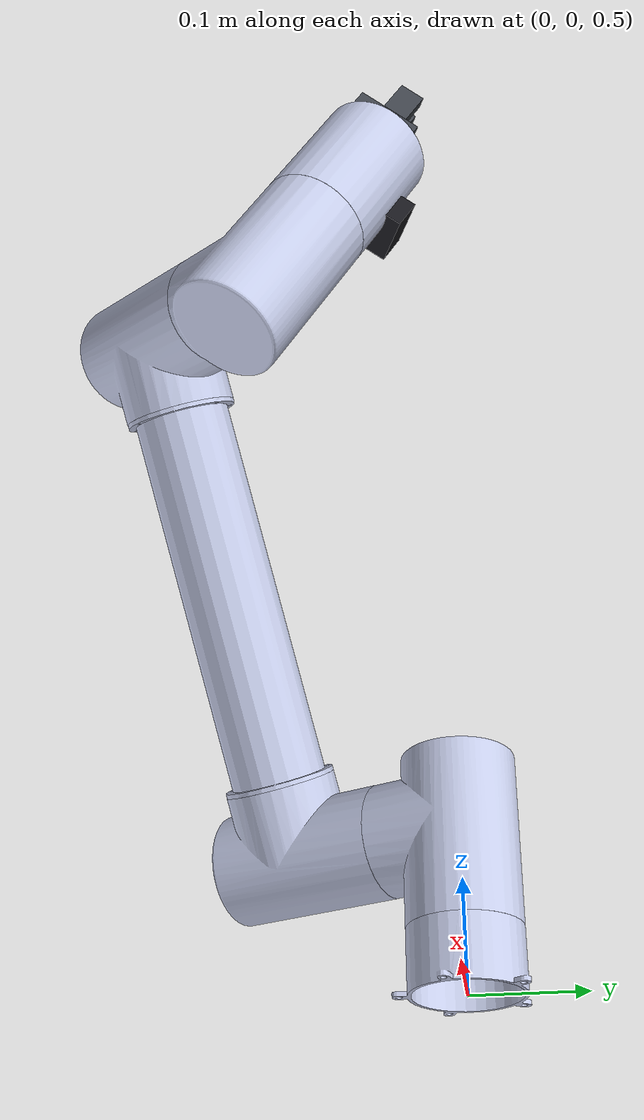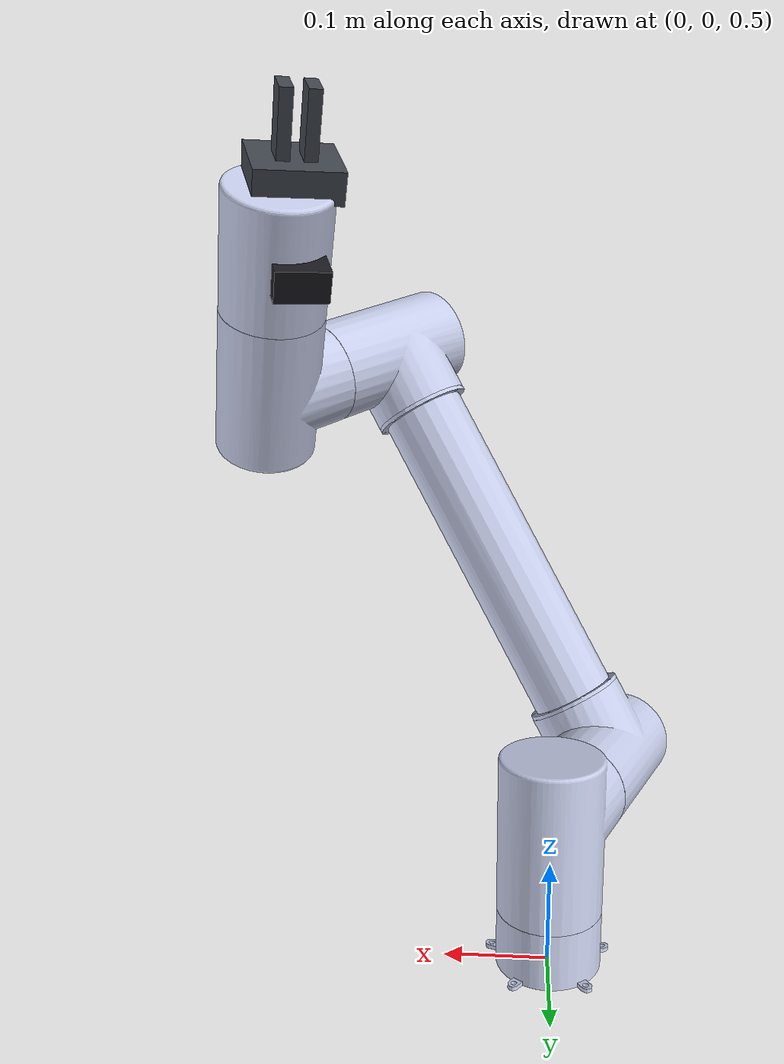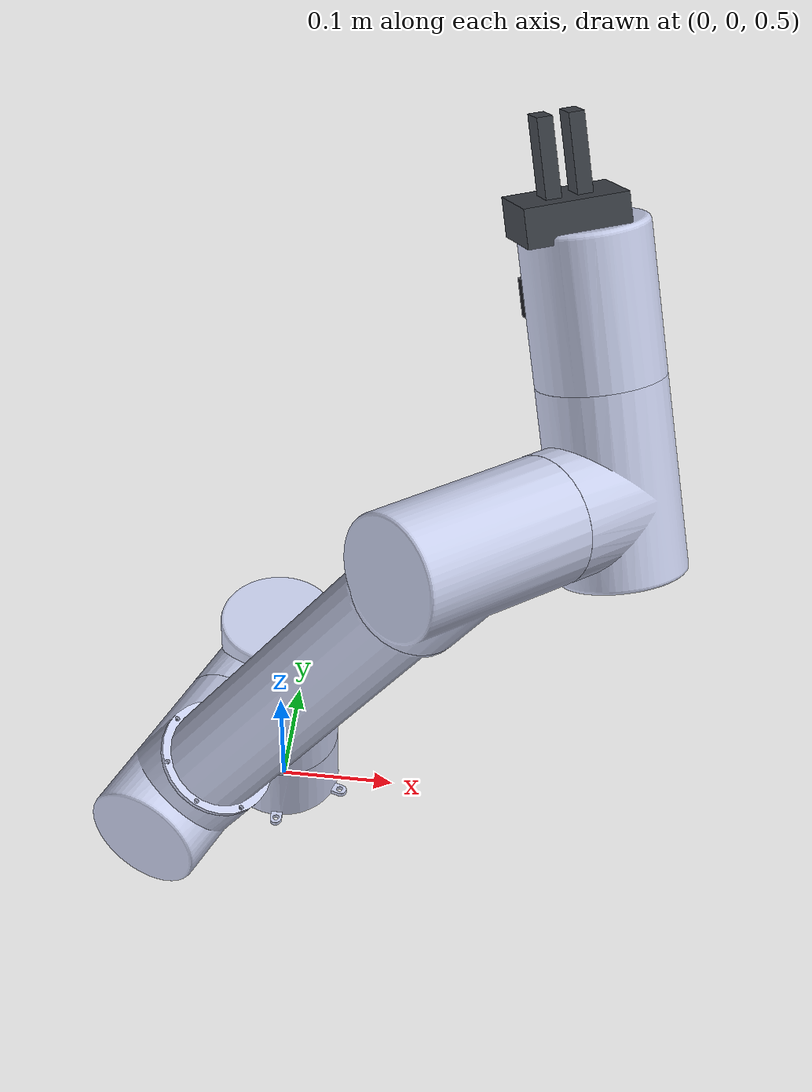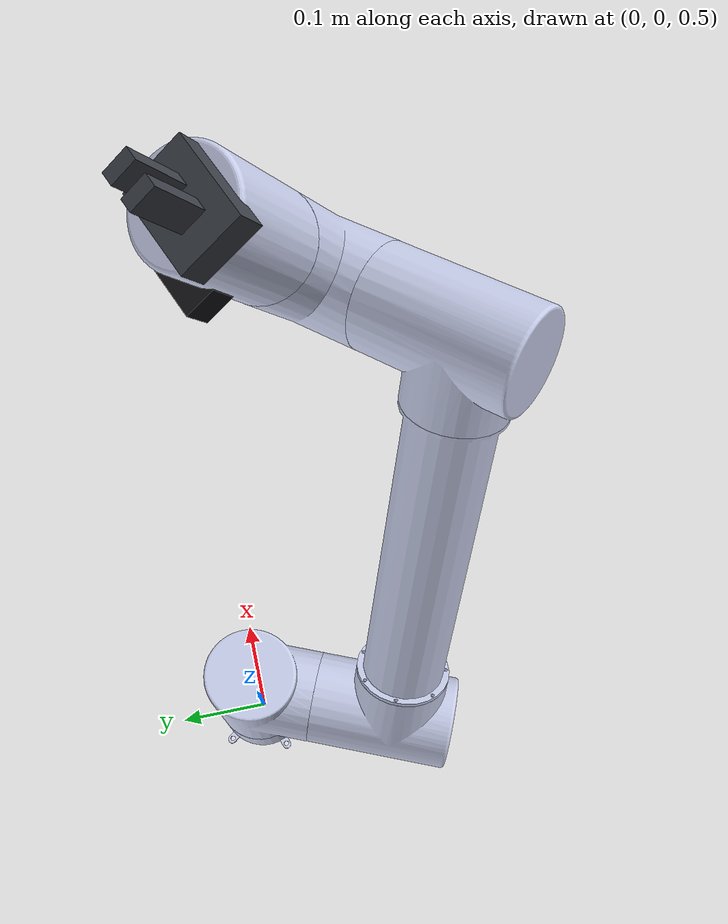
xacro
<?xml version="1.0"?>
<robot name="uw_arm" xmlns:xacro="http://www.ros.org/wiki/xacro">

  <xacro:arg name="use_gazebo"     default="true"/>
  <xacro:arg name="use_camera"     default="true"/>
  <xacro:arg name="use_gripper"    default="true"/>
  <xacro:arg name="controllers_yaml" default=""/>

  <!--  RECOVERED JOINT AXIS POINTS (metres, in the CAD export frame)        -->
  <!--  Accuracy: a few mm. Replace with exact values after re-export.       -->
  <xacro:property name="p1x" value="-0.0009"/>
  <xacro:property name="p1y" value="-0.0019"/>
  <xacro:property name="p1z" value=" 0.0560"/>

  <xacro:property name="p2x" value="-0.0088"/>
  <xacro:property name="p2y" value="-0.0211"/>
  <xacro:property name="p2z" value=" 0.1634"/>

  <xacro:property name="p3x" value="-0.0480"/>
  <xacro:property name="p3y" value="-0.1662"/>
  <xacro:property name="p3z" value=" 0.1764"/>

  <xacro:property name="p4x" value=" 0.0674"/>
  <xacro:property name="p4y" value="-0.1998"/>
  <xacro:property name="p4z" value=" 0.3735"/>

  <xacro:property name="p5x" value=" 0.1815"/>
  <xacro:property name="p5y" value="-0.2277"/>
  <xacro:property name="p5z" value=" 0.5423"/>

  <xacro:property name="p6x" value=" 0.2747"/>
  <xacro:property name="p6y" value="-0.1480"/>
  <xacro:property name="p6z" value=" 0.5264"/>

  <!-- Joint axis directions - EXACT, taken verbatim from the SW export -->
  <xacro:property name="a1" value="0 0 -1"/>
  <xacro:property name="a2" value="-0.38463 -0.92307 0"/>
  <xacro:property name="a3" value="0.48107 -0.20046 0.85346"/>
  <xacro:property name="a4" value="-0.48107 0.20046 -0.85346"/>
  <xacro:property name="a5" value="0.68254 0.6966 -0.22111"/>
  <xacro:property name="a6" value="-0.18988 0.46117 0.86676"/>

  <!-- Distance from joint-6 axis point to the gripper mount, along axis 6.
       Estimated from the link6 mesh extent; tune if the gripper floats. -->
  <xacro:property name="tool_offset" value="0.21"/>

  <xacro:property name="jt_damping"  value="0.5"/>
  <xacro:property name="jt_friction" value="0.1"/>

  <xacro:property name="mesh_pkg" value="package://uw_arm_description/meshes"/>
  <material name="arm_grey"><color rgba="0.79216 0.81961 0.93333 1"/></material>

  <!--  LINK MACRO                                                           -->
  <!--  The STL meshes are authored in the CAD export frame, so each link's   -->
  <!--  visual/collision must be shifted by -p_i to sit correctly in its own  -->
  <!--  (now non-degenerate) link frame. Same for the inertial origin.        -->
  <xacro:macro name="arm_link"
               params="name mesh ox:=0 oy:=0 oz:=0 mass cx:=0 cy:=0 cz:=0
                       ixx ixy ixz iyy iyz izz">
    <link name="${name}">
      <inertial>
        <origin xyz="${cx - ox} ${cy - oy} ${cz - oz}" rpy="0 0 0"/>
        <mass value="${mass}"/>
        <inertia ixx="${ixx}" ixy="${ixy}" ixz="${ixz}"
                 iyy="${iyy}" iyz="${iyz}" izz="${izz}"/>
      </inertial>
      <visual>
        <origin xyz="${-ox} ${-oy} ${-oz}" rpy="0 0 0"/>
        <geometry><mesh filename="${mesh_pkg}/${mesh}"/></geometry>
        <material name="arm_grey"/>
      </visual>
      <collision>
        <origin xyz="${-ox} ${-oy} ${-oz}" rpy="0 0 0"/>
        <geometry><mesh filename="${mesh_pkg}/${mesh}"/></geometry>
      </collision>
    </link>
  </xacro:macro>

  <xacro:macro name="arm_joint"
               params="name parent child axis px py pz lower upper effort vel">
    <joint name="${name}" type="revolute">
      <origin xyz="${px} ${py} ${pz}" rpy="0 0 0"/>
      <parent link="${parent}"/>
      <child  link="${child}"/>
      <axis xyz="${axis}"/>
      <limit lower="${lower}" upper="${upper}" effort="${effort}" velocity="${vel}"/>
      <dynamics damping="${jt_damping}" friction="${jt_friction}"/>
    </joint>
  </xacro:macro>

  <!--  WORLD ANCHOR                                                         -->
  <!--  The manipulator is bolted to a subsea pedestal. gz_ros2_control needs -->
  <link name="world"/>
  <xacro:property name="base_mount_z" value="0.5"/>
  <joint name="world_to_base" type="fixed">
    <parent link="world"/><child link="base_link"/>
    <origin xyz="0 0 ${base_mount_z}" rpy="0 0 0"/>
  </joint>

  <!--  KINEMATIC CHAIN                                                      -->
  <xacro:arm_link name="base_link" mesh="base_link.STL" ox="0" oy="0" oz="0"
    mass="0.070028" cx="0" cy="0" cz="0.03379"
    ixx="9.8396E-05" ixy="-8.1426E-21" ixz="4.5244E-21"
    iyy="9.8396E-05" iyz="7.8582E-21"  izz="0.00014834"/>

  <xacro:arm_link name="link1" mesh="link1.STL" ox="${p1x}" oy="${p1y}" oz="${p1z}"
    mass="0.20637" cx="-0.00056391" cy="-0.0013587" cz="0.14089"
    ixx="0.00074532" ixy="-2.8774E-06" ixz="5.8402E-07"
    iyy="0.00073962" iyz="1.4393E-06"  izz="0.00050704"/>
  <xacro:arm_joint name="joint1" parent="base_link" child="link1" axis="${a1}"
    px="${p1x}" py="${p1y}" pz="${p1z}" lower="0" upper="3.142" effort="300" vel="3"/>

  <xacro:arm_link name="link2" mesh="link2.STL" ox="${p2x}" oy="${p2y}" oz="${p2z}"
    mass="0.41274" cx="-0.029715" cy="-0.072313" cz="0.14407"
    ixx="0.0014551" ixy="-8.6563E-05" ixz="-2.2294E-06"
    iyy="0.0012812" iyz="4.0496E-06"  izz="0.0012477"/>
  <xacro:arm_joint name="joint2" parent="link1" child="link2" axis="${a2}"
    px="${p2x - p1x}" py="${p2y - p1y}" pz="${p2z - p1z}"
    lower="-1.57" upper="1.57" effort="200" vel="3"/>

  <xacro:arm_link name="link3" mesh="link3.STL" ox="${p3x}" oy="${p3y}" oz="${p3z}"
    mass="0.53072" cx="0.01153" cy="-0.17599" cz="0.27428"
    ixx="0.0038359" ixy="0.00023811" ixz="-0.0013729"
    iyy="0.0043059" iyz="0.00057351" izz="0.0022084"/>
  <xacro:arm_joint name="joint3" parent="link2" child="link3" axis="${a3}"
    px="${p3x - p2x}" py="${p3y - p2y}" pz="${p3z - p2z}"
    lower="0" upper="3.142" effort="200" vel="3"/>

  <xacro:arm_link name="link4" mesh="link4.STL" ox="${p4x}" oy="${p4y}" oz="${p4z}"
    mass="0.53071906" cx="0.10323347" cy="-0.21440169" cz="0.43547649"
    ixx="0.00375821" ixy="0.00020841" ixz="-0.00133801"
    iyy="0.00439472" iyz="0.00060818" izz="0.00219730"/>
  <xacro:arm_joint name="joint4" parent="link3" child="link4" axis="${a4}"
    px="${p4x - p3x}" py="${p4y - p3y}" pz="${p4z - p3z}"
    lower="0" upper="3.142" effort="200" vel="3"/>

  <xacro:arm_link name="link5" mesh="link5.STL" ox="${p5x}" oy="${p5y}" oz="${p5z}"
    mass="0.41274189" cx="0.22918950" cy="-0.18759446" cz="0.54768842"
    ixx="0.00136660" ixy="-9.65624E-05" ixz="7.17150E-05"
    iyy="0.00132108" iyz="-5.79692E-05" izz="0.00129630"/>
  <xacro:arm_joint name="joint5" parent="link4" child="link5" axis="${a5}"
    px="${p5x - p4x}" py="${p5y - p4y}" pz="${p5z - p4z}"
    lower="-1.57" upper="1.57" effort="200" vel="3"/>

  <xacro:arm_link name="link6" mesh="link6.STL" ox="${p6x}" oy="${p6y}" oz="${p6z}"
    mass="0.34277481" cx="0.27001000" cy="-0.10404812" cz="0.58732817"
    ixx="0.00107935" ixy="2.21347E-05"  ixz="4.96201E-05"
    iyy="0.00102479" iyz="-0.000119476" izz="0.00086827"/>
  <xacro:arm_joint name="joint6" parent="link5" child="link6" axis="${a6}"
    px="${p6x - p5x}" py="${p6y - p5y}" pz="${p6z - p5z}"
    lower="0" upper="3.14" effort="200" vel="3"/>

  <!--  TOOL FRAME                                                           -->
  <!--  tool0 sits on the joint-6 axis, tool_offset metres out from the axis  -->
  <!--  point, with +Z pointing along the approach direction (= axis 6).      -->
  <!--  rpy solves Rz(yaw)Ry(pitch)*z_hat = a6.                               -->
  <link name="tool0"/>
  <joint name="link6_to_tool0" type="fixed">
    <parent link="link6"/><child link="tool0"/>
    <origin xyz="${tool_offset * -0.18988} ${tool_offset * 0.46117} ${tool_offset * 0.86676}"
            rpy="0 0.5232 1.9600"/>
  </joint>

  <!--  OPTIONAL SUBSYSTEMS                                                  -->
  <xacro:if value="$(arg use_gripper)">
    <xacro:include filename="$(find uw_arm_description)/urdf/gripper.xacro"/>
    <xacro:uw_gripper parent="tool0"/>
  </xacro:if>

  <xacro:if value="$(arg use_camera)">
    <xacro:include filename="$(find uw_arm_description)/urdf/camera.xacro"/>
    <xacro:wrist_camera parent="tool0"/>
  </xacro:if>

  <xacro:include filename="$(find uw_arm_description)/urdf/uw_arm.ros2_control.xacro"/>
  <xacro:uw_arm_ros2_control use_gripper="$(arg use_gripper)"/>

  <xacro:if value="$(arg use_gazebo)">
    <xacro:include filename="$(find uw_arm_description)/urdf/uw_arm.gazebo.xacro"/>
    <xacro:uw_arm_gazebo controllers_yaml="$(arg controllers_yaml)"
                         use_camera="$(arg use_camera)"/>
  </xacro:if>

</robot>

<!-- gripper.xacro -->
<robot xmlns:xacro="http://www.ros.org/wiki/xacro">

  <xacro:macro name="uw_gripper" params="parent">

    <xacro:property name="palm_len"    value="0.030"/>
    <xacro:property name="finger_len"  value="0.060"/>
    <xacro:property name="half_gap"    value="0.012"/>  <!-- jaw inset at q=0 -->
    <xacro:property name="stroke"      value="0.035"/>  <!-- per-jaw travel   -->

    <material name="gripper_dark"><color rgba="0.25 0.27 0.30 1"/></material>

    <!-- Palm -->
    <link name="gripper_palm">
      <inertial>
        <origin xyz="0 0 ${palm_len/2}"/>
        <mass value="0.150"/>
        <inertia ixx="1.0e-4" ixy="0" ixz="0" iyy="1.0e-4" iyz="0" izz="1.2e-4"/>
      </inertial>
      <visual>
        <origin xyz="0 0 ${palm_len/2}"/>
        <geometry><box size="0.060 0.080 ${palm_len}"/></geometry>
        <material name="gripper_dark"/>
      </visual>
      <collision>
        <origin xyz="0 0 ${palm_len/2}"/>
        <geometry><box size="0.060 0.080 ${palm_len}"/></geometry>
      </collision>
    </link>
    <joint name="tool0_to_palm" type="fixed">
      <parent link="${parent}"/><child link="gripper_palm"/>
      <origin xyz="0 0 0" rpy="0 0 0"/>
    </joint>

    <!-- Jaw macro: reflect = +1 (left) / -1 (right) -->
    <xacro:macro name="jaw" params="name reflect">
      <link name="${name}">
        <inertial>
          <origin xyz="0 0 ${finger_len/2}"/>
          <mass value="0.030"/>
          <inertia ixx="1.5e-5" ixy="0" ixz="0" iyy="1.5e-5" iyz="0" izz="4.0e-6"/>
        </inertial>
        <visual>
          <origin xyz="0 0 ${finger_len/2}"/>
          <geometry><box size="0.024 0.012 ${finger_len}"/></geometry>
          <material name="gripper_dark"/>
        </visual>
        <collision>
          <origin xyz="0 0 ${finger_len/2}"/>
          <geometry><box size="0.024 0.012 ${finger_len}"/></geometry>
        </collision>
      </link>
    </xacro:macro>

    <xacro:jaw name="finger_left"  reflect="1"/>
    <xacro:jaw name="finger_right" reflect="-1"/>

    <joint name="finger_left_joint" type="prismatic">
      <parent link="gripper_palm"/><child link="finger_left"/>
      <origin xyz="0 ${half_gap} ${palm_len}" rpy="0 0 0"/>
      <axis xyz="0 1 0"/>
      <limit lower="0.0" upper="${stroke}" effort="60" velocity="0.1"/>
      <dynamics damping="2.0" friction="0.5"/>
    </joint>

    <joint name="finger_right_joint" type="prismatic">
      <parent link="gripper_palm"/><child link="finger_right"/>
      <origin xyz="0 ${-half_gap} ${palm_len}" rpy="0 0 0"/>
      <axis xyz="0 -1 0"/>
      <limit lower="0.0" upper="${stroke}" effort="60" velocity="0.1"/>
      <dynamics damping="2.0" friction="0.5"/>
    </joint>

    <!-- Grasp target frame: mid-way up the jaws, on the approach axis.
         perception plans grasps to THIS frame, not to tool0. -->
    <link name="grasp_link"/>
    <joint name="palm_to_grasp" type="fixed">
      <parent link="gripper_palm"/><child link="grasp_link"/>
      <origin xyz="0 0 ${palm_len + finger_len*0.75}" rpy="0 0 0"/>
    </joint>

  </xacro:macro>
</robot>

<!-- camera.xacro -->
<robot xmlns:xacro="http://www.ros.org/wiki/xacro">

  <xacro:macro name="wrist_camera" params="parent">

    <xacro:property name="cam_back"  value="-0.055"/>  <!-- behind tool0 along Z -->
    <xacro:property name="cam_side"  value="0.055"/>   <!-- offset off the axis  -->

    <link name="camera_link">
      <inertial>
        <mass value="0.05"/>
        <inertia ixx="1e-5" ixy="0" ixz="0" iyy="1e-5" iyz="0" izz="1e-5"/>
      </inertial>
      <visual>
        <geometry><box size="0.030 0.050 0.030"/></geometry>
        <material name="cam_black"><color rgba="0.1 0.1 0.12 1"/></material>
      </visual>
      <collision>
        <geometry><box size="0.030 0.050 0.030"/></geometry>
      </collision>
    </link>

    <!-- rpy (0, -pi/2, 0) maps camera_link +X onto parent +Z -->
    <joint name="tool0_to_camera" type="fixed">
      <parent link="${parent}"/><child link="camera_link"/>
      <origin xyz="${cam_side} 0 ${cam_back}" rpy="0 ${-pi/2} 0"/>
    </joint>

    <link name="camera_optical_frame"/>
    <joint name="camera_optical_joint" type="fixed">
      <parent link="camera_link"/><child link="camera_optical_frame"/>
      <origin xyz="0 0 0" rpy="${-pi/2} 0 ${-pi/2}"/>
    </joint>

  </xacro:macro>
</robot>
